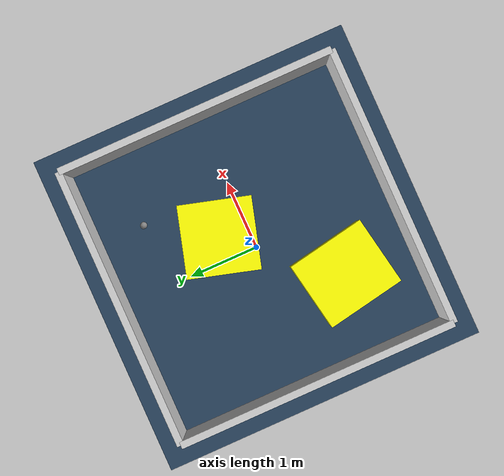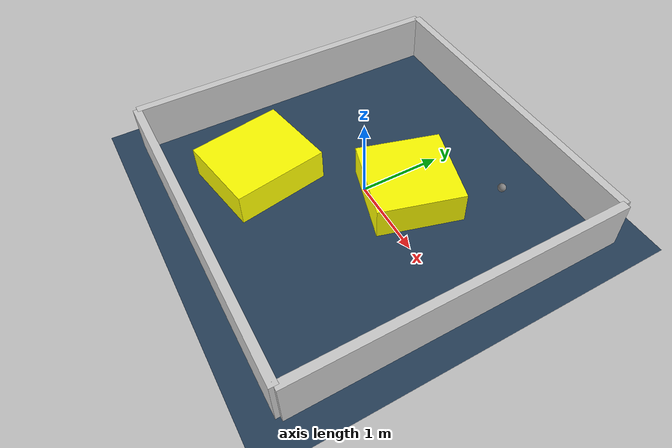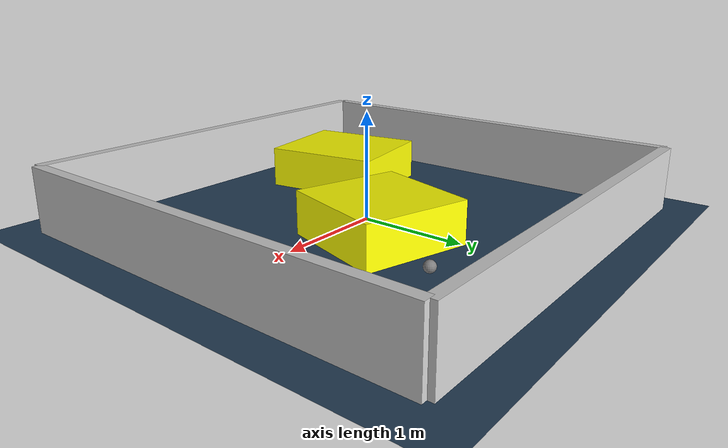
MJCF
<?xml version="1.0" ?>
<mujoco model="generated_environment">
  <option timestep="0.01" integrator="RK4" cone="elliptic"/>
  <default>
    <geom density="1"/>
  </default>
  <asset>
    <texture builtin="gradient" height="3072" rgb1="0.3 0.5 0.7" rgb2="0 0 0" type="skybox" width="512"/>
    <texture builtin="checker" height="300" mark="edge" markrgb="0.8 0.8 0.8" name="groundplane" rgb1="0.2 0.3 0.4" rgb2="0.1 0.2 0.3" type="2d" width="300"/>
    <material name="groundplane" reflectance="0.2" texrepeat="5 5" texture="groundplane" texuniform="true"/>
    <material name="robot" rgba="0.0 1.0 0.0 1"/>
  </asset>
  <worldbody>
    <light dir="0 0 -1" directional="true" pos="0 0 1.5"/>
    <geom condim="4" friction="1.0 0.005 0.001" material="groundplane" name="floor" size="0 0 0.05" type="plane"/>
    <body name="walls">
      <geom name="wall_1" condim="4" pos="-2.0 0.0 0.3" rgba="0.800000011920929 0.800000011920929 0.800000011920929 1.0" size="0.05 2.0 0.3" type="box"/>
      <geom name="wall_2" condim="4" pos="2.0 0.0 0.3" rgba="0.800000011920929 0.800000011920929 0.800000011920929 1.0" size="0.05 2.0 0.3" type="box"/>
      <geom name="wall_3" condim="4" pos="0.0 -2.0 0.3" rgba="0.800000011920929 0.800000011920929 0.800000011920929 1.0" size="2.0 0.05 0.3" type="box"/>
      <geom name="wall_4" condim="4" pos="0.0 2.0 0.3" rgba="0.800000011920929 0.800000011920929 0.800000011920929 1.0" size="2.0 0.05 0.3" type="box"/>
    </body>
    <body name="robot">
      <joint name="joint_x" type="slide" pos="0 0 0" axis="1 0 0"/>
      <joint name="joint_y" type="slide" pos="0 0 0" axis="0 1 0"/>
      <geom name="robot" type="sphere" pos="0.9165221527095819 1.2949540959764785 0.2" size="0.05" mass="5." friction="1.0 0.005 0.0001" condim="4"/>
      <site name="sensor_ball"/>
    </body>
    <body name="obstacle_1_movable">
      <geom name="obstacle_1_movable" condim="4" pos="-0.8249733525497347 -0.9677952770022304 0.2" euler="0 0 10.211062251874484" friction="1.0 0.005 0.001" rgba="1 1 0 1" size="0.5001893736956795 0.5686367215315195 0.2" type="box" mass="0.1"/>
      <joint type="free"/>
    </body>
    <body name="obstacle_2_movable">
      <geom name="obstacle_2_movable" condim="4" pos="0.3310137185527062 0.40447313505703475 0.2" euler="0 0 73.93239260646168" friction="1.0 0.005 0.001" rgba="1 1 0 1" size="0.5147648880429869 0.5092641131520128 0.2" type="box" mass="0.1"/>
      <joint type="free"/>
    </body>
  </worldbody>
  <actuator>
    <motor name="actuator_x" joint="joint_x" gear="1" ctrlrange="-1 1"/>
    <motor name="actuator_y" joint="joint_y" gear="1" ctrlrange="-1 1"/>
  </actuator>
</mujoco>
